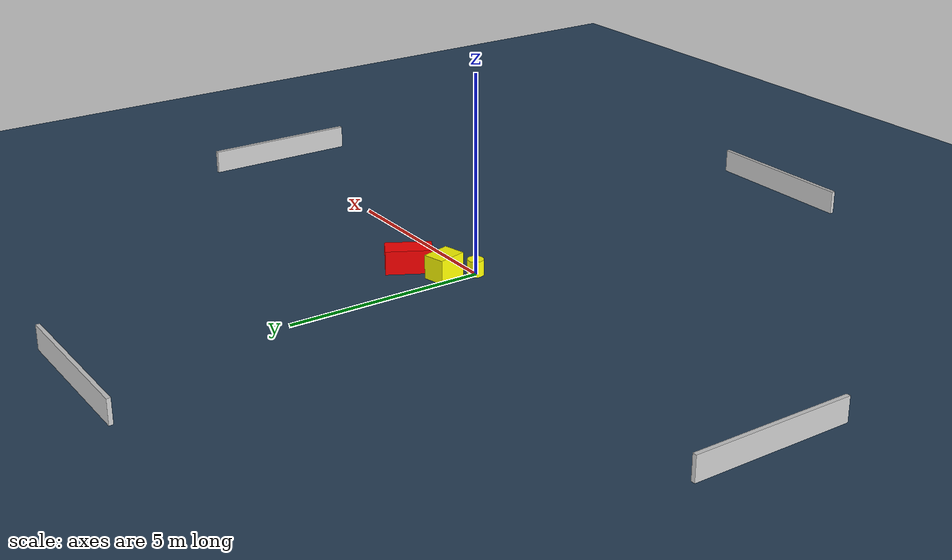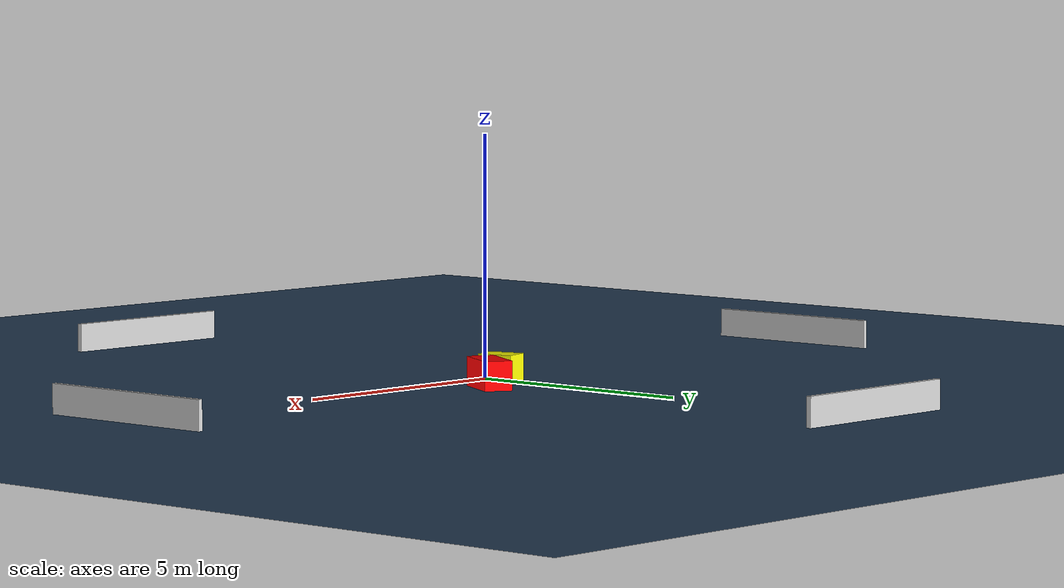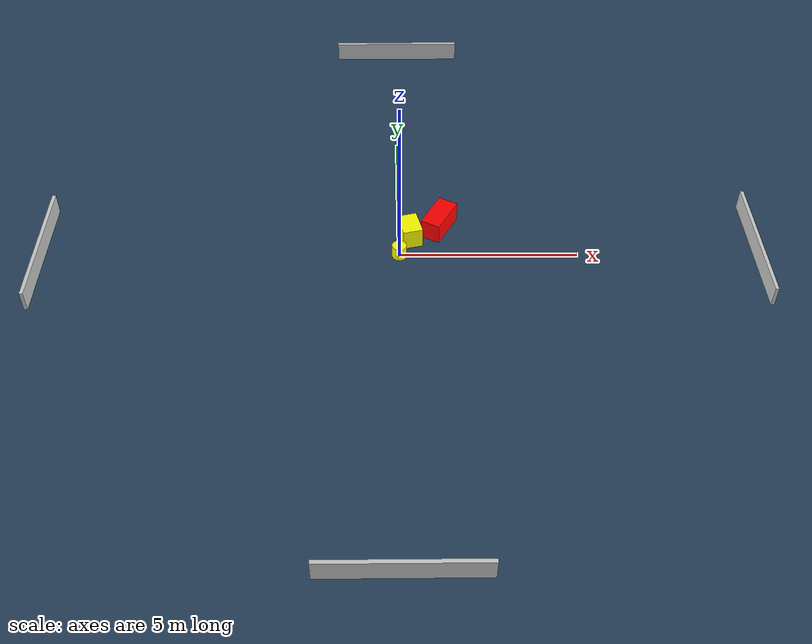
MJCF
<?xml version="1.0" ?>
<mujoco model="generated_environment">
  <option timestep="0.01" integrator="RK4" cone="elliptic"/>
  <default>
    <geom density="1"/>
  </default>
  <asset>
    <texture builtin="gradient" height="3072" name="skybox" rgb1="0.3 0.5 0.7" rgb2="0 0 0" type="skybox" width="512"/>
    <texture builtin="checker" height="300" name="groundplane" rgb1="0.2 0.3 0.4" rgb2="0.1 0.2 0.3" type="2d" width="300"/>
    <material name="groundplane" reflectance="0.2" texrepeat="5 5" texture="groundplane"/>
  </asset>
  <worldbody>
    <light dir="0 0 -1" directional="true" pos="0 0 1.5"/>
    <geom condim="3" friction="0.5 0.005 0.001" material="groundplane" name="floor" pos="0 0 0" size="0 0 0.05" type="plane"/>
    <body name="walls">
      <geom name="wall_1" condim="4" pos="-10.0 0.0 0.3" rgba="0.800000011920929 0.800000011920929 0.800000011920929 1.0" size="0.05 2.0 0.3" type="box"/>
      <geom name="wall_2" condim="4" pos="10.0 0.0 0.3" rgba="0.800000011920929 0.800000011920929 0.800000011920929 1.0" size="0.05 2.0 0.3" type="box"/>
      <geom name="wall_3" condim="4" pos="0.0 -10.0 0.3" rgba="0.800000011920929 0.800000011920929 0.800000011920929 1.0" size="2.0 0.05 0.3" type="box"/>
      <geom name="wall_4" condim="4" pos="0.0 10.0 0.3" rgba="0.800000011920929 0.800000011920929 0.800000011920929 1.0" size="2.0 0.05 0.3" type="box"/>
    </body>
    <body name="robot">
      <joint name="joint_x" type="slide" pos="0 0 0" axis="1 0 0"/>
      <joint name="joint_y" type="slide" pos="0 0 0" axis="0 1 0"/>
      <geom name="robot" type="cylinder" pos="0.0 0.0 0.2" size="0.2 0.2 0.0" mass="5.0" friction="1.0 0.005 0.0001" condim="4" rgba="1.0 1.0 0.0 1.0"/>
    </body>
    <body name="obstacle_1_movable">
      <geom name="obstacle_1_movable" condim="4" pos="0.30345233415837497 0.7061158904299715 0.3" euler="0 0 283.80587857316107" friction="0.0 0.005 0.001" rgba="1.0 1.0 0.0 1.0" size="0.37081867051658324 0.28011743103294745 0.3" type="box" mass="0.1"/>
      <joint type="free"/>
    </body>
    <body name="obstacle_2_static">
      <geom name="obstacle_2_static" condim="4" pos="1.149007081990624 1.165748004390001 0.3" euler="0 0 241.11248374545016" friction="0.0 0.005 0.001" rgba="1.0 0.0 0.0 1.0" size="0.5726209324335656 0.28698702760171246 0.3" type="box"/>
    </body>
  </worldbody>
  <actuator>
    <motor name="actuator_x" joint="joint_x" gear="1" ctrlrange="-1 1"/>
    <motor name="actuator_y" joint="joint_y" gear="1" ctrlrange="-1 1"/>
  </actuator>
</mujoco>
